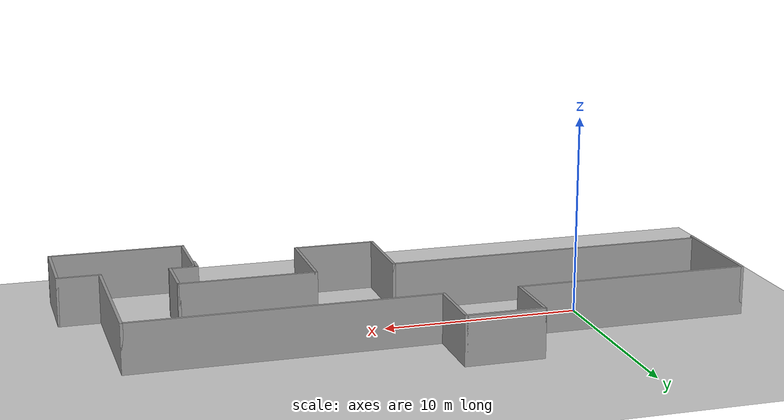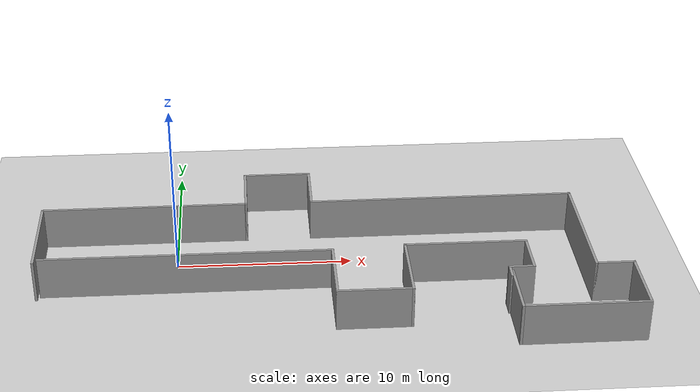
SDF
<?xml version='1.0'?>
<sdf version='1.7'>
  <world name="hospital_world">

    <model name='ground_plane'>
      <static>true</static>
      <link name='link'>
        <collision name='collision'>
          <geometry>
            <plane>
              <normal>0 0 1</normal>
              <size>100 100</size>
            </plane>
          </geometry>
          <surface>
            <friction>
              <ode>
                <mu>100</mu>
                <mu2>50</mu2>
              </ode>
            </friction>
          </surface>
        </collision>

        <visual name='visual'>
          <geometry>
            <plane>
              <normal>0 0 1</normal>
              <size>100 100</size>
            </plane>
          </geometry>
          <material>
            <ambient>0.8 0.8 0.8 1</ambient>
            <diffuse>0.8 0.8 0.8 1</diffuse>
            <specular>0.8 0.8 0.8 1</specular>
          </material>
        </visual>
      </link>
    </model>

    <!-- Sun -->
    <light type="directional" name="sun">
      <cast_shadows>true</cast_shadows>
      <pose>0 0 10 0 0 0</pose>
      <diffuse>0.8 0.8 0.8 1</diffuse>
      <specular>0.2 0.2 0.2 1</specular>
      <direction>-0.5 0.1 -0.9</direction>
    </light>

  <model name='hospital'>
    <pose>8.73746 -1.3318 0 0 -0 0</pose>
    <link name='Wall_11'>
      <collision name='Wall_11_Collision'>
        <geometry>
          <box>
            <size>3.5 0.15 2.5</size>
          </box>
        </geometry>
        <pose>0 0 1.25 0 -0 0</pose>
      </collision>
      <visual name='Wall_11_Visual'>
        <pose>0 0 1.25 0 -0 0</pose>
        <geometry>
          <box>
            <size>3.5 0.15 2.5</size>
          </box>
        </geometry>
        <material>
          <script>
            <uri>file://media/materials/scripts/gazebo.material</uri>
            <name>Gazebo/Grey</name>
          </script>
          <ambient>1 1 1 1</ambient>
        </material>
        <meta>
          <layer>0</layer>
        </meta>
      </visual>
      <pose>-4.725 5.725 0 0 -0 1.5708</pose>
    </link>
    <link name='Wall_12'>
      <collision name='Wall_12_Collision'>
        <geometry>
          <box>
            <size>4 0.15 2.5</size>
          </box>
        </geometry>
        <pose>0 0 1.25 0 -0 0</pose>
      </collision>
      <visual name='Wall_12_Visual'>
        <pose>0 0 1.25 0 -0 0</pose>
        <geometry>
          <box>
            <size>4 0.15 2.5</size>
          </box>
        </geometry>
        <material>
          <script>
            <uri>file://media/materials/scripts/gazebo.material</uri>
            <name>Gazebo/Grey</name>
          </script>
          <ambient>1 1 1 1</ambient>
        </material>
        <meta>
          <layer>0</layer>
        </meta>
      </visual>
      <pose>-2.8 7.4 0 0 -0 0</pose>
    </link>
    <link name='Wall_13'>
      <collision name='Wall_13_Collision'>
        <geometry>
          <box>
            <size>3.5 0.15 2.5</size>
          </box>
        </geometry>
        <pose>0 0 1.25 0 -0 0</pose>
      </collision>
      <visual name='Wall_13_Visual'>
        <pose>0 0 1.25 0 -0 0</pose>
        <geometry>
          <box>
            <size>3.5 0.15 2.5</size>
          </box>
        </geometry>
        <material>
          <script>
            <uri>file://media/materials/scripts/gazebo.material</uri>
            <name>Gazebo/Grey</name>
          </script>
          <ambient>1 1 1 1</ambient>
        </material>
        <meta>
          <layer>0</layer>
        </meta>
      </visual>
      <pose>-0.875 5.725 0 0 -0 -1.5708</pose>
    </link>
    <link name='Wall_14'>
      <collision name='Wall_14_Collision'>
        <geometry>
          <box>
            <size>15.5 0.15 2.5</size>
          </box>
        </geometry>
        <pose>0 0 1.25 0 -0 0</pose>
      </collision>
      <visual name='Wall_14_Visual'>
        <pose>0 0 1.25 0 -0 0</pose>
        <geometry>
          <box>
            <size>15.5 0.15 2.5</size>
          </box>
        </geometry>
        <material>
          <script>
            <uri>file://media/materials/scripts/gazebo.material</uri>
            <name>Gazebo/Grey</name>
          </script>
          <ambient>1 1 1 1</ambient>
        </material>
        <meta>
          <layer>0</layer>
        </meta>
      </visual>
      <pose>6.8 4.05 0 0 -0 0</pose>
    </link>
    <link name='Wall_15'>
      <collision name='Wall_15_Collision'>
        <geometry>
          <box>
            <size>7.75 0.15 2.5</size>
          </box>
        </geometry>
        <pose>0 0 1.25 0 -0 0</pose>
      </collision>
      <visual name='Wall_15_Visual'>
        <pose>0 0 1.25 0 -0 0</pose>
        <geometry>
          <box>
            <size>7.75 0.15 2.5</size>
          </box>
        </geometry>
        <material>
          <script>
            <uri>file://media/materials/scripts/gazebo.material</uri>
            <name>Gazebo/Grey</name>
          </script>
          <ambient>1 1 1 1</ambient>
        </material>
        <meta>
          <layer>0</layer>
        </meta>
      </visual>
      <pose>14.475 0.25 0 0 -0 -1.5708</pose>
    </link>
    <link name='Wall_16'>
      <collision name='Wall_16_Collision'>
        <geometry>
          <box>
            <size>2.25 0.15 2.5</size>
          </box>
        </geometry>
        <pose>0 0 1.25 0 -0 0</pose>
      </collision>
      <visual name='Wall_16_Visual'>
        <pose>0 0 1.25 0 -0 0</pose>
        <geometry>
          <box>
            <size>2.25 0.15 2.5</size>
          </box>
        </geometry>
        <material>
          <script>
            <uri>file://media/materials/scripts/gazebo.material</uri>
            <name>Gazebo/Grey</name>
          </script>
          <ambient>1 1 1 1</ambient>
        </material>
        <meta>
          <layer>0</layer>
        </meta>
      </visual>
      <pose>15.525 -3.55 0 0 -0 0</pose>
    </link>
    <link name='Wall_17'>
      <collision name='Wall_17_Collision'>
        <geometry>
          <box>
            <size>4 0.15 2.5</size>
          </box>
        </geometry>
        <pose>0 0 1.25 0 -0 0</pose>
      </collision>
      <visual name='Wall_17_Visual'>
        <pose>0 0 1.25 0 -0 0</pose>
        <geometry>
          <box>
            <size>4 0.15 2.5</size>
          </box>
        </geometry>
        <material>
          <script>
            <uri>file://media/materials/scripts/gazebo.material</uri>
            <name>Gazebo/Grey</name>
          </script>
          <ambient>1 1 1 1</ambient>
        </material>
        <meta>
          <layer>0</layer>
        </meta>
      </visual>
      <pose>16.575 -5.475 0 0 -0 -1.5708</pose>
    </link>
    <link name='Wall_18'>
      <collision name='Wall_18_Collision'>
        <geometry>
          <box>
            <size>7 0.15 2.5</size>
          </box>
        </geometry>
        <pose>0 0 1.25 0 -0 0</pose>
      </collision>
      <visual name='Wall_18_Visual'>
        <pose>0 0 1.25 0 -0 0</pose>
        <geometry>
          <box>
            <size>7 0.15 2.5</size>
          </box>
        </geometry>
        <material>
          <script>
            <uri>file://media/materials/scripts/gazebo.material</uri>
            <name>Gazebo/Grey</name>
          </script>
          <ambient>1 1 1 1</ambient>
        </material>
        <meta>
          <layer>0</layer>
        </meta>
      </visual>
      <pose>13.15 -7.4 0 0 -0 3.14159</pose>
    </link>
    <link name='Wall_19'>
      <collision name='Wall_19_Collision'>
        <geometry>
          <box>
            <size>3.5 0.15 2.5</size>
          </box>
        </geometry>
        <pose>0 0 1.25 0 -0 0</pose>
      </collision>
      <visual name='Wall_19_Visual'>
        <pose>0 0 1.25 0 -0 0</pose>
        <geometry>
          <box>
            <size>3.5 0.15 2.5</size>
          </box>
        </geometry>
        <material>
          <script>
            <uri>file://media/materials/scripts/gazebo.material</uri>
            <name>Gazebo/Grey</name>
          </script>
          <ambient>1 1 1 1</ambient>
        </material>
        <meta>
          <layer>0</layer>
        </meta>
      </visual>
      <pose>9.725 -5.725 0 0 -0 1.5708</pose>
    </link>
    <link name='Wall_28'>
      <collision name='Wall_28_Collision'>
        <geometry>
          <box>
            <size>16.5 0.15 2.5</size>
          </box>
        </geometry>
        <pose>0 0 1.25 0 -0 0</pose>
      </collision>
      <visual name='Wall_28_Visual'>
        <pose>0 0 1.25 0 -0 0</pose>
        <geometry>
          <box>
            <size>16.5 0.15 2.5</size>
          </box>
        </geometry>
        <material>
          <script>
            <uri>file://media/materials/scripts/gazebo.material</uri>
            <name>Gazebo/Grey</name>
          </script>
          <ambient>1 1 1 1</ambient>
        </material>
        <meta>
          <layer>0</layer>
        </meta>
      </visual>
      <pose>-8.13879 -1.26237 0 0 -0 0</pose>
    </link>
    <link name='Wall_29'>
      <collision name='Wall_29_Collision'>
        <geometry>
          <box>
            <size>4.25 0.15 2.5</size>
          </box>
        </geometry>
        <pose>0 0 1.25 0 -0 0</pose>
      </collision>
      <visual name='Wall_29_Visual'>
        <pose>0 0 1.25 0 -0 0</pose>
        <geometry>
          <box>
            <size>4.25 0.15 2.5</size>
          </box>
        </geometry>
        <material>
          <script>
            <uri>file://media/materials/scripts/gazebo.material</uri>
            <name>Gazebo/Grey</name>
          </script>
          <ambient>1 1 1 1</ambient>
        </material>
        <meta>
          <layer>0</layer>
        </meta>
      </visual>
      <pose>0.036209 -3.31237 0 0 -0 -1.5708</pose>
    </link>
    <link name='Wall_30'>
      <collision name='Wall_30_Collision'>
        <geometry>
          <box>
            <size>4.25 0.15 2.5</size>
          </box>
        </geometry>
        <pose>0 0 1.25 0 -0 0</pose>
      </collision>
      <visual name='Wall_30_Visual'>
        <pose>0 0 1.25 0 -0 0</pose>
        <geometry>
          <box>
            <size>4.25 0.15 2.5</size>
          </box>
        </geometry>
        <material>
          <script>
            <uri>file://media/materials/scripts/gazebo.material</uri>
            <name>Gazebo/Grey</name>
          </script>
          <ambient>1 1 1 1</ambient>
        </material>
        <meta>
          <layer>0</layer>
        </meta>
      </visual>
      <pose>2.08621 -5.36237 0 0 -0 0</pose>
    </link>
    <link name='Wall_31'>
      <collision name='Wall_31_Collision'>
        <geometry>
          <box>
            <size>4.5 0.15 2.5</size>
          </box>
        </geometry>
        <pose>0 0 1.25 0 -0 0</pose>
      </collision>
      <visual name='Wall_31_Visual'>
        <pose>0 0 1.25 0 -0 0</pose>
        <geometry>
          <box>
            <size>4.5 0.15 2.5</size>
          </box>
        </geometry>
        <material>
          <script>
            <uri>file://media/materials/scripts/gazebo.material</uri>
            <name>Gazebo/Grey</name>
          </script>
          <ambient>1 1 1 1</ambient>
        </material>
        <meta>
          <layer>0</layer>
        </meta>
      </visual>
      <pose>4.13621 -3.18737 0 0 -0 1.5708</pose>
    </link>
    <link name='Wall_32'>
      <collision name='Wall_32_Collision'>
        <geometry>
          <box>
            <size>7 0.15 2.5</size>
          </box>
        </geometry>
        <pose>0 0 1.25 0 -0 0</pose>
      </collision>
      <visual name='Wall_32_Visual'>
        <pose>0 0 1.25 0 -0 0</pose>
        <geometry>
          <box>
            <size>7 0.15 2.5</size>
          </box>
        </geometry>
        <material>
          <script>
            <uri>file://media/materials/scripts/gazebo.material</uri>
            <name>Gazebo/Grey</name>
          </script>
          <ambient>1 1 1 1</ambient>
        </material>
        <meta>
          <layer>0</layer>
        </meta>
      </visual>
      <pose>7.56121 -1.01237 0 0 -0 0</pose>
    </link>
    <link name='Wall_33'>
      <collision name='Wall_33_Collision'>
        <geometry>
          <box>
            <size>2.75 0.15 2.5</size>
          </box>
        </geometry>
        <pose>0 0 1.25 0 -0 0</pose>
      </collision>
      <visual name='Wall_33_Visual'>
        <pose>0 0 1.25 0 -0 0</pose>
        <geometry>
          <box>
            <size>2.75 0.15 2.5</size>
          </box>
        </geometry>
        <material>
          <script>
            <uri>file://media/materials/scripts/gazebo.material</uri>
            <name>Gazebo/Grey</name>
          </script>
          <ambient>1 1 1 1</ambient>
        </material>
        <meta>
          <layer>0</layer>
        </meta>
      </visual>
      <pose>10.9862 -2.31237 0 0 -0 -1.5708</pose>
    </link>
    <link name='Wall_34'>
      <collision name='Wall_34_Collision'>
        <geometry>
          <box>
            <size>1.5 0.15 2.5</size>
          </box>
        </geometry>
        <pose>0 0 1.25 0 -0 0</pose>
      </collision>
      <visual name='Wall_34_Visual'>
        <pose>0 0 1.25 0 -0 0</pose>
        <geometry>
          <box>
            <size>1.5 0.15 2.5</size>
          </box>
        </geometry>
        <material>
          <script>
            <uri>file://media/materials/scripts/gazebo.material</uri>
            <name>Gazebo/Grey</name>
          </script>
          <ambient>1 1 1 1</ambient>
        </material>
        <meta>
          <layer>0</layer>
        </meta>
      </visual>
      <pose>10.3112 -3.61237 0 0 -0 3.14159</pose>
    </link>
    <link name='Wall_35'>
      <collision name='Wall_35_Collision'>
        <geometry>
          <box>
            <size>1 0.15 2.5</size>
          </box>
        </geometry>
        <pose>0 0 1.25 0 -0 0</pose>
      </collision>
      <visual name='Wall_35_Visual'>
        <pose>0 0 1.25 0 -0 0</pose>
        <geometry>
          <box>
            <size>1 0.15 2.5</size>
          </box>
        </geometry>
        <material>
          <script>
            <uri>file://media/materials/scripts/gazebo.material</uri>
            <name>Gazebo/Grey</name>
          </script>
          <ambient>1 1 1 1</ambient>
        </material>
        <meta>
          <layer>0</layer>
        </meta>
      </visual>
      <pose>9.63621 -4.03737 0 0 -0 -1.5708</pose>
    </link>
    <link name='Wall_38'>
      <collision name='Wall_38_Collision'>
        <geometry>
          <box>
            <size>5.75 0.15 2.5</size>
          </box>
        </geometry>
        <pose>0 0 1.25 0 -0 0</pose>
      </collision>
      <visual name='Wall_38_Visual'>
        <pose>0 0 1.25 0 -0 0</pose>
        <geometry>
          <box>
            <size>5.75 0.15 2.5</size>
          </box>
        </geometry>
        <material>
          <script>
            <uri>file://media/materials/scripts/gazebo.material</uri>
            <name>Gazebo/Grey</name>
          </script>
          <ambient>1 1 1 1</ambient>
        </material>
        <meta>
          <layer>0</layer>
        </meta>
      </visual>
      <pose>-16.575 1.25 0 0 -0 -1.5708</pose>
    </link>
    <link name='Wall_7'>
      <collision name='Wall_7_Collision'>
        <geometry>
          <box>
            <size>12 0.15 2.5</size>
          </box>
        </geometry>
        <pose>0 0 1.25 0 -0 0</pose>
      </collision>
      <visual name='Wall_7_Visual'>
        <pose>0 0 1.25 0 -0 0</pose>
        <geometry>
          <box>
            <size>12 0.15 2.5</size>
          </box>
        </geometry>
        <material>
          <script>
            <uri>file://media/materials/scripts/gazebo.material</uri>
            <name>Gazebo/Grey</name>
          </script>
          <ambient>1 1 1 1</ambient>
        </material>
        <meta>
          <layer>0</layer>
        </meta>
      </visual>
      <pose>-10.65 4.05 0 0 -0 0</pose>
    </link>
    <static>1</static>
  </model>
  </world>

</sdf>
